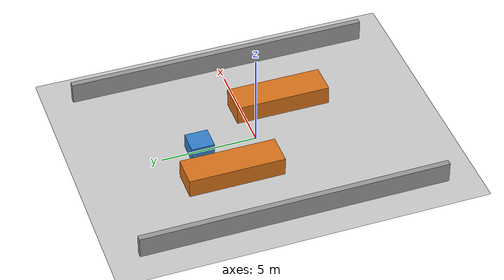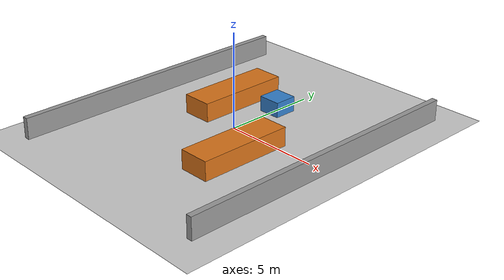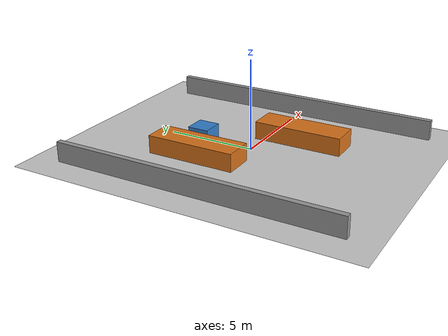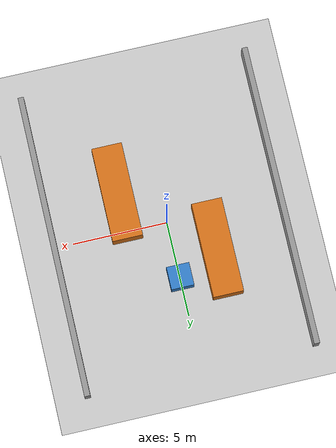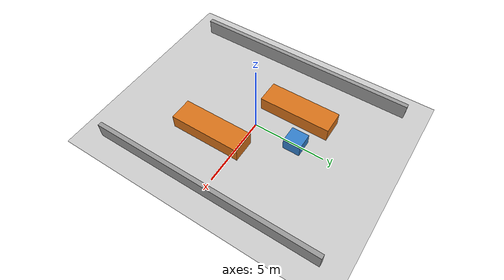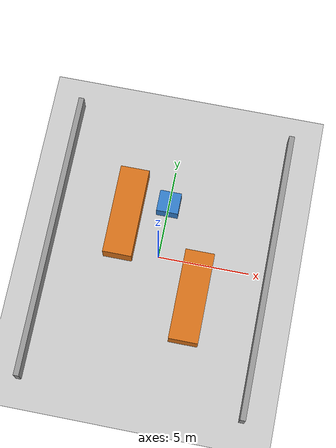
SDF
<?xml version="1.0" ?>
<sdf version="1.6">
  <world name="warehouse_world">

    <physics type="ode">
      <max_step_size>0.001</max_step_size>
      <real_time_factor>1.0</real_time_factor>
      <real_time_update_rate>1000</real_time_update_rate>
    </physics>

    <include>
      <uri>model://sun</uri>
    </include>

    <include>
      <uri>model://ground_plane</uri>
    </include>

    <model name="warehouse_outer_wall_left">
      <static>true</static>
      <pose>-6 0 0.5 0 0 0</pose>
      <link name="link">
        <collision name="collision">
          <geometry><box><size>0.3 16 1.2</size></box></geometry>
        </collision>
        <visual name="visual">
          <geometry><box><size>0.3 16 1.2</size></box></geometry>
          <material>
            <ambient>0.5 0.5 0.5 1</ambient>
            <diffuse>0.6 0.6 0.6 1</diffuse>
          </material>
        </visual>
      </link>
    </model>

    <model name="warehouse_outer_wall_right">
      <static>true</static>
      <pose>6 0 0.5 0 0 0</pose>
      <link name="link">
        <collision name="collision">
          <geometry><box><size>0.3 16 1.2</size></box></geometry>
        </collision>
        <visual name="visual">
          <geometry><box><size>0.3 16 1.2</size></box></geometry>
          <material>
            <ambient>0.5 0.5 0.5 1</ambient>
            <diffuse>0.6 0.6 0.6 1</diffuse>
          </material>
        </visual>
      </link>
    </model>

    <model name="cargo_aisle_row_left">
      <static>true</static>
      <pose>-2.2 2 0.5 0 0 0</pose>
      <link name="link">
        <collision name="collision">
          <geometry><box><size>1.6 5 1.0</size></box></geometry>
        </collision>
        <visual name="visual">
          <geometry><box><size>1.6 5 1.0</size></box></geometry>
          <material>
            <ambient>0.85 0.45 0.1 1</ambient>
            <diffuse>0.85 0.45 0.1 1</diffuse>
          </material>
        </visual>
      </link>
    </model>

    <model name="cargo_aisle_row_right">
      <static>true</static>
      <pose>2.2 -2 0.5 0 0 0</pose>
      <link name="link">
        <collision name="collision">
          <geometry><box><size>1.6 5 1.0</size></box></geometry>
        </collision>
        <visual name="visual">
          <geometry><box><size>1.6 5 1.0</size></box></geometry>
          <material>
            <ambient>0.85 0.45 0.1 1</ambient>
            <diffuse>0.85 0.45 0.1 1</diffuse>
          </material>
        </visual>
      </link>
    </model>

    <model name="central_pallet_cargo">
      <static>true</static>
      <pose>0 3 0.4 0 0 0</pose>
      <link name="link">
        <collision name="collision">
          <geometry><box><size>1.2 1.2 0.8</size></box></geometry>
        </collision>
        <visual name="visual">
          <geometry><box><size>1.2 1.2 0.8</size></box></geometry>
          <material>
            <ambient>0.2 0.5 0.8 1</ambient>
            <diffuse>0.2 0.5 0.8 1</diffuse>
          </material>
        </visual>
      </link>
    </model>

  </world>
</sdf>
